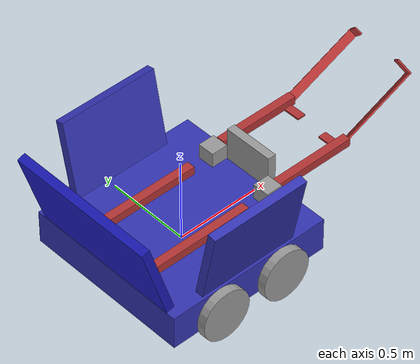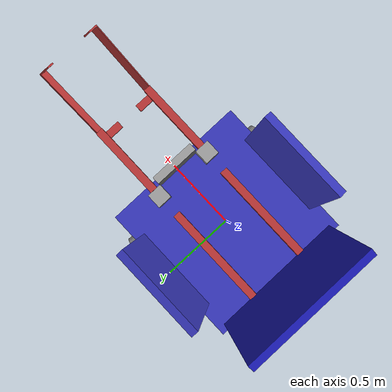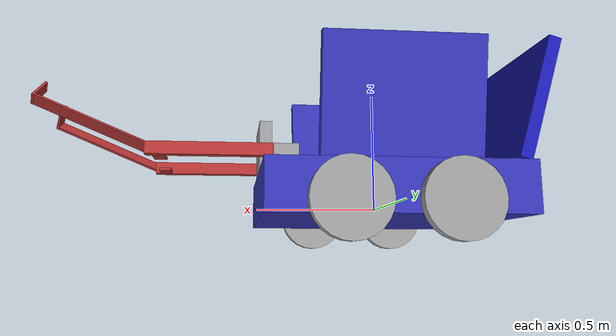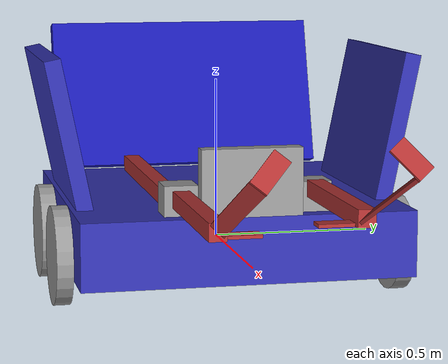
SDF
<?xml version='1.0'?>
<sdf version='1.5'>
  <model name='EKIPS'>
    <link name='base'>
      <pose frame=''>0 -0 0.05 0 -0 0</pose>
      <inertial>
        <mass>40</mass>
        <pose frame=''>0 0 0 0 -0 0</pose>
        <inertia>
          <ixx>1</ixx>
          <ixy>0</ixy>
          <ixz>0</ixz>
          <iyy>1</iyy>
          <iyz>0</iyz>
          <izz>1</izz>
        </inertia>
      </inertial>
      <self_collide>0</self_collide>
      <kinematic>0</kinematic>
      <sensor name='baseUltrasonic' type='sonar'>
        <visualize>1</visualize>
        <always_on>1</always_on>
        <pose frame=''>0.5 0 0.15 0 -1.5707 0</pose>
        <sonar>
          <min>1.5</min>
          <max>8</max>
          <radius>0.2</radius>
        </sonar>
      </sensor>
      <visual name='visual'>
        <pose frame=''>0 0 0 0 -0 0</pose>
        <geometry>
          <box>
            <size>1 1 0.2</size>
          </box>
        </geometry>
        <material>
          <lighting>1</lighting>
          <script>
            <uri>file://media/materials/scripts/gazebo.material</uri>
            <name>Gazebo/Grey</name>
          </script>
          <shader type='pixel'>
            <normal_map>__default__</normal_map>
          </shader>
          <ambient>0 0 0.3 1</ambient>
          <diffuse>0.2 0.2 0.7 1</diffuse>
          <specular>0.01 0.01 0.01 1</specular>
          <emissive>0 0 0 1</emissive>
        </material>
        <transparency>0</transparency>
        <cast_shadows>1</cast_shadows>
      </visual>
      <collision name='collision'>
        <laser_retro>0</laser_retro>
        <max_contacts>10</max_contacts>
        <pose frame=''>0 0 0 0 -0 0</pose>
        <geometry>
          <box>
            <size>1 1 0.2</size>
          </box>
        </geometry>
        <surface>
          <friction>
            <ode>
              <mu>1</mu>
              <mu2>1</mu2>
              <fdir1>0 0 0</fdir1>
              <slip1>0</slip1>
              <slip2>0</slip2>
            </ode>
          </friction>
          <bounce>
            <restitution_coefficient>0</restitution_coefficient>
            <threshold>1e+06</threshold>
          </bounce>
          <contact>
            <collide_without_contact>0</collide_without_contact>
            <collide_without_contact_bitmask>1</collide_without_contact_bitmask>
            <collide_bitmask>1</collide_bitmask>
            <ode>
              <soft_cfm>0</soft_cfm>
              <soft_erp>0.2</soft_erp>
              <kp>1e+13</kp>
              <kd>1</kd>
              <max_vel>0.01</max_vel>
              <min_depth>0</min_depth>
            </ode>
            <bullet>
              <split_impulse>1</split_impulse>
              <split_impulse_penetration_threshold>-0.01</split_impulse_penetration_threshold>
              <soft_cfm>0</soft_cfm>
              <soft_erp>0.2</soft_erp>
              <kp>1e+13</kp>
              <kd>1</kd>
            </bullet>
          </contact>
        </surface>
      </collision>
    </link>
    <link name='back_left_wheel'>
      <pose frame=''>-0.2 0.525 0 1.5707 -0 0</pose>
      <inertial>
        <mass>0.5</mass>
        <pose frame=''>0 0 0 0 -0 0</pose>
        <inertia>
          <ixx>0.00294332</ixx>
          <ixy>0</ixy>
          <ixz>0</ixz>
          <iyy>0.00152724</iyy>
          <iyz>0</iyz>
          <izz>0.00152724</izz>
        </inertia>
      </inertial>
      <self_collide>0</self_collide>
      <kinematic>0</kinematic>
      <visual name='visual'>
        <pose frame=''>0 0 0 0 -0 0</pose>
        <geometry>
          <cylinder>
            <radius>0.15</radius>
            <length>0.05</length>
          </cylinder>
        </geometry>
        <material>
          <lighting>1</lighting>
          <script>
            <uri>file://media/materials/scripts/gazebo.material</uri>
            <name>Gazebo/Grey</name>
          </script>
          <shader type='pixel'>
            <normal_map>__default__</normal_map>
          </shader>
          <ambient>0 0 0 1</ambient>
          <diffuse>0.9 0.9 0.9 1</diffuse>
          <specular>0.01 0.01 0.01 1</specular>
          <emissive>0 0 0 1</emissive>
        </material>
        <transparency>0</transparency>
        <cast_shadows>1</cast_shadows>
      </visual>
      <collision name='collision'>
        <laser_retro>0</laser_retro>
        <max_contacts>10</max_contacts>
        <pose frame=''>0 0 0 0 -0 0</pose>
        <geometry>
          <cylinder>
            <radius>0.15</radius>
            <length>0.05</length>
          </cylinder>
        </geometry>
        <surface>
          <friction>
            <ode>
              <mu>1</mu>
              <mu2>1</mu2>
              <fdir1>0 0 0</fdir1>
              <slip1>0</slip1>
              <slip2>0</slip2>
            </ode>
          </friction>
          <bounce>
            <restitution_coefficient>0</restitution_coefficient>
            <threshold>1e+06</threshold>
          </bounce>
          <contact>
            <collide_without_contact>0</collide_without_contact>
            <collide_without_contact_bitmask>1</collide_without_contact_bitmask>
            <collide_bitmask>1</collide_bitmask>
            <ode>
              <soft_cfm>0</soft_cfm>
              <soft_erp>0.2</soft_erp>
              <kp>1e+13</kp>
              <kd>1</kd>
              <max_vel>0.01</max_vel>
              <min_depth>0</min_depth>
            </ode>
            <bullet>
              <split_impulse>1</split_impulse>
              <split_impulse_penetration_threshold>-0.01</split_impulse_penetration_threshold>
              <soft_cfm>0</soft_cfm>
              <soft_erp>0.2</soft_erp>
              <kp>1e+13</kp>
              <kd>1</kd>
            </bullet>
          </contact>
        </surface>
      </collision>
    </link>
    <link name='back_right_wheel'>
      <pose frame=''>-0.2 -0.525 0 1.5707 -0 0</pose>
      <inertial>
        <mass>0.5</mass>
        <pose frame=''>0 0 0 0 -0 0</pose>
        <inertia>
          <ixx>0.00294332</ixx>
          <ixy>0</ixy>
          <ixz>0</ixz>
          <iyy>0.00152724</iyy>
          <iyz>0</iyz>
          <izz>0.00152724</izz>
        </inertia>
      </inertial>
      <self_collide>0</self_collide>
      <kinematic>0</kinematic>
      <visual name='visual'>
        <pose frame=''>0 0 0 0 -0 0</pose>
        <geometry>
          <cylinder>
            <radius>0.15</radius>
            <length>0.05</length>
          </cylinder>
        </geometry>
        <material>
          <lighting>1</lighting>
          <script>
            <uri>file://media/materials/scripts/gazebo.material</uri>
            <name>Gazebo/Grey</name>
          </script>
          <shader type='pixel'>
            <normal_map>__default__</normal_map>
          </shader>
          <ambient>0 0 0 1</ambient>
          <diffuse>0.9 0.9 0.9 1</diffuse>
          <specular>0.01 0.01 0.01 1</specular>
          <emissive>0 0 0 1</emissive>
        </material>
        <transparency>0</transparency>
        <cast_shadows>1</cast_shadows>
      </visual>
      <collision name='collision'>
        <laser_retro>0</laser_retro>
        <max_contacts>10</max_contacts>
        <pose frame=''>0 0 0 0 -0 0</pose>
        <geometry>
          <cylinder>
            <radius>0.15</radius>
            <length>0.05</length>
          </cylinder>
        </geometry>
        <surface>
          <friction>
            <ode>
              <mu>1</mu>
              <mu2>1</mu2>
              <fdir1>0 0 0</fdir1>
              <slip1>0</slip1>
              <slip2>0</slip2>
            </ode>
          </friction>
          <bounce>
            <restitution_coefficient>0</restitution_coefficient>
            <threshold>1e+06</threshold>
          </bounce>
          <contact>
            <collide_without_contact>0</collide_without_contact>
            <collide_without_contact_bitmask>1</collide_without_contact_bitmask>
            <collide_bitmask>1</collide_bitmask>
            <ode>
              <soft_cfm>0</soft_cfm>
              <soft_erp>0.2</soft_erp>
              <kp>1e+13</kp>
              <kd>1</kd>
              <max_vel>0.01</max_vel>
              <min_depth>0</min_depth>
            </ode>
            <bullet>
              <split_impulse>1</split_impulse>
              <split_impulse_penetration_threshold>-0.01</split_impulse_penetration_threshold>
              <soft_cfm>0</soft_cfm>
              <soft_erp>0.2</soft_erp>
              <kp>1e+13</kp>
              <kd>1</kd>
            </bullet>
          </contact>
        </surface>
      </collision>
    </link>
    <link name='back_wall'>
      <pose frame=''>-0.55 0 0.4 0 -0.3 0</pose>
      <inertial>
        <mass>1</mass>
        <pose frame=''>0 0 0 0 -0 0</pose>
        <inertia>
          <ixx>1</ixx>
          <ixy>0</ixy>
          <ixz>0</ixz>
          <iyy>1</iyy>
          <iyz>0</iyz>
          <izz>1</izz>
        </inertia>
      </inertial>
      <self_collide>0</self_collide>
      <kinematic>0</kinematic>
      <visual name='visual'>
        <pose frame=''>0 0 0 0 -0 0</pose>
        <geometry>
          <box>
            <size>0.05 0.9 0.5</size>
          </box>
        </geometry>
        <material>
          <lighting>1</lighting>
          <script>
            <uri>file://media/materials/scripts/gazebo.material</uri>
            <name>Gazebo/Grey</name>
          </script>
          <shader type='pixel'>
            <normal_map>__default__</normal_map>
          </shader>
          <ambient>0 0 0.3 1</ambient>
          <diffuse>0.1 0.1 0.7 1</diffuse>
          <specular>0.01 0.01 0.01 1</specular>
          <emissive>0 0 0 1</emissive>
        </material>
        <transparency>0</transparency>
        <cast_shadows>1</cast_shadows>
      </visual>
      <collision name='collision'>
        <laser_retro>0</laser_retro>
        <max_contacts>10</max_contacts>
        <pose frame=''>0 0 0 0 -0 0</pose>
        <geometry>
          <box>
            <size>0.05 0.9 0.5</size>
          </box>
        </geometry>
        <surface>
          <friction>
            <ode>
              <mu>1</mu>
              <mu2>1</mu2>
              <fdir1>0 0 0</fdir1>
              <slip1>0</slip1>
              <slip2>0</slip2>
            </ode>
          </friction>
          <bounce>
            <restitution_coefficient>0</restitution_coefficient>
            <threshold>1e+06</threshold>
          </bounce>
          <contact>
            <collide_without_contact>0</collide_without_contact>
            <collide_without_contact_bitmask>1</collide_without_contact_bitmask>
            <collide_bitmask>1</collide_bitmask>
            <ode>
              <soft_cfm>0</soft_cfm>
              <soft_erp>0.2</soft_erp>
              <kp>1e+13</kp>
              <kd>1</kd>
              <max_vel>0.01</max_vel>
              <min_depth>0</min_depth>
            </ode>
            <bullet>
              <split_impulse>1</split_impulse>
              <split_impulse_penetration_threshold>-0.01</split_impulse_penetration_threshold>
              <soft_cfm>0</soft_cfm>
              <soft_erp>0.2</soft_erp>
              <kp>1e+13</kp>
              <kd>1</kd>
            </bullet>
          </contact>
        </surface>
      </collision>
    </link>
    <link name='flipper'>
      <pose frame=''>-0.1 0 0.175 0 -0 0</pose>
      <inertial>
        <mass>1</mass>
        <pose frame=''>0 0 0 0 -0 0</pose>
        <inertia>
          <ixx>1</ixx>
          <ixy>0</ixy>
          <ixz>0</ixz>
          <iyy>1</iyy>
          <iyz>0</iyz>
          <izz>1</izz>
        </inertia>
      </inertial>
      <self_collide>0</self_collide>
      <kinematic>0</kinematic>
      <visual name='ModelPreview_1::flipper::visual_1'>
        <pose frame=''>0 -0.2 0 0 -0 0</pose>
        <geometry>
          <box>
            <size>0.7 0.05 0.05</size>
          </box>
        </geometry>
        <material>
          <lighting>1</lighting>
          <script>
            <uri>file://media/materials/scripts/gazebo.material</uri>
            <name>Gazebo/Grey</name>
          </script>
          <shader type='pixel'>
            <normal_map>__default__</normal_map>
          </shader>
          <ambient>0.7 0 0 1</ambient>
          <diffuse>0.7 0.2 0.2 1</diffuse>
          <specular>0.01 0.01 0.01 1</specular>
          <emissive>0 0 0 1</emissive>
        </material>
        <transparency>0</transparency>
        <cast_shadows>1</cast_shadows>
      </visual>
      <visual name='visual'>
        <pose frame=''>0 0.2 0 0 -0 0</pose>
        <geometry>
          <box>
            <size>0.7 0.05 0.05</size>
          </box>
        </geometry>
        <material>
          <lighting>1</lighting>
          <script>
            <uri>file://media/materials/scripts/gazebo.material</uri>
            <name>Gazebo/Grey</name>
          </script>
          <shader type='pixel'>
            <normal_map>__default__</normal_map>
          </shader>
          <ambient>0.7 0 0 1</ambient>
          <diffuse>0.7 0.2 0.2 1</diffuse>
          <specular>0.01 0.01 0.01 1</specular>
          <emissive>0 0 0 1</emissive>
        </material>
        <transparency>0</transparency>
        <cast_shadows>1</cast_shadows>
      </visual>
      <collision name='collision'>
        <laser_retro>0</laser_retro>
        <max_contacts>10</max_contacts>
        <pose frame=''>0 0.2 0 0 -0 0</pose>
        <geometry>
          <box>
            <size>0.7 0.05 0.05</size>
          </box>
        </geometry>
        <surface>
          <friction>
            <ode>
              <mu>1</mu>
              <mu2>1</mu2>
              <fdir1>0 0 0</fdir1>
              <slip1>0</slip1>
              <slip2>0</slip2>
            </ode>
          </friction>
          <bounce>
            <restitution_coefficient>0</restitution_coefficient>
            <threshold>1e+06</threshold>
          </bounce>
          <contact>
            <collide_without_contact>0</collide_without_contact>
            <collide_without_contact_bitmask>1</collide_without_contact_bitmask>
            <collide_bitmask>1</collide_bitmask>
            <ode>
              <soft_cfm>0</soft_cfm>
              <soft_erp>0.2</soft_erp>
              <kp>1e+13</kp>
              <kd>1</kd>
              <max_vel>0.01</max_vel>
              <min_depth>0</min_depth>
            </ode>
            <bullet>
              <split_impulse>1</split_impulse>
              <split_impulse_penetration_threshold>-0.01</split_impulse_penetration_threshold>
              <soft_cfm>0</soft_cfm>
              <soft_erp>0.2</soft_erp>
              <kp>1e+13</kp>
              <kd>1</kd>
            </bullet>
          </contact>
        </surface>
      </collision>
      <collision name='collision_1'>
        <laser_retro>0</laser_retro>
        <max_contacts>10</max_contacts>
        <pose frame=''>0 -0.2 0 0 -0 0</pose>
        <geometry>
          <box>
            <size>0.7 0.05 0.05</size>
          </box>
        </geometry>
        <surface>
          <friction>
            <ode>
              <mu>1</mu>
              <mu2>1</mu2>
              <fdir1>0 0 0</fdir1>
              <slip1>0</slip1>
              <slip2>0</slip2>
            </ode>
          </friction>
          <bounce>
            <restitution_coefficient>0</restitution_coefficient>
            <threshold>1e+06</threshold>
          </bounce>
          <contact>
            <collide_without_contact>0</collide_without_contact>
            <collide_without_contact_bitmask>1</collide_without_contact_bitmask>
            <collide_bitmask>1</collide_bitmask>
            <ode>
              <soft_cfm>0</soft_cfm>
              <soft_erp>0.2</soft_erp>
              <kp>1e+13</kp>
              <kd>1</kd>
              <max_vel>0.01</max_vel>
              <min_depth>0</min_depth>
            </ode>
            <bullet>
              <split_impulse>1</split_impulse>
              <split_impulse_penetration_threshold>-0.01</split_impulse_penetration_threshold>
              <soft_cfm>0</soft_cfm>
              <soft_erp>0.2</soft_erp>
              <kp>1e+13</kp>
              <kd>1</kd>
            </bullet>
          </contact>
        </surface>
      </collision>
    </link>
    <link name='front_left_wheel'>
      <pose frame=''>0.2 0.525 -0 1.5707 -0 0</pose>
      <inertial>
        <mass>0.5</mass>
        <pose frame=''>0 0 0 0 -0 0</pose>
        <inertia>
          <ixx>0.00294332</ixx>
          <ixy>0</ixy>
          <ixz>0</ixz>
          <iyy>0.00152724</iyy>
          <iyz>0</iyz>
          <izz>0.00152724</izz>
        </inertia>
      </inertial>
      <self_collide>1</self_collide>
      <kinematic>0</kinematic>
      <visual name='visual'>
        <pose frame=''>0 0 0 0 -0 0</pose>
        <geometry>
          <cylinder>
            <radius>0.15</radius>
            <length>0.05</length>
          </cylinder>
        </geometry>
        <material>
          <lighting>1</lighting>
          <script>
            <uri>file://media/materials/scripts/gazebo.material</uri>
            <name>Gazebo/Grey</name>
          </script>
          <shader type='pixel'>
            <normal_map>__default__</normal_map>
          </shader>
          <ambient>0 0 0 1</ambient>
          <diffuse>0.9 0.9 0.9 1</diffuse>
          <specular>0.01 0.01 0.01 1</specular>
          <emissive>0 0 0 1</emissive>
        </material>
        <transparency>0</transparency>
        <cast_shadows>1</cast_shadows>
      </visual>
      <collision name='collision'>
        <laser_retro>0</laser_retro>
        <max_contacts>10</max_contacts>
        <pose frame=''>0 0 0 0 -0 0</pose>
        <geometry>
          <cylinder>
            <radius>0.15</radius>
            <length>0.05</length>
          </cylinder>
        </geometry>
        <surface>
          <friction>
            <ode>
              <mu>1</mu>
              <mu2>1</mu2>
              <fdir1>0 0 0</fdir1>
              <slip1>0</slip1>
              <slip2>0</slip2>
            </ode>
          </friction>
          <bounce>
            <restitution_coefficient>0</restitution_coefficient>
            <threshold>1e+06</threshold>
          </bounce>
          <contact>
            <collide_without_contact>0</collide_without_contact>
            <collide_without_contact_bitmask>1</collide_without_contact_bitmask>
            <collide_bitmask>1</collide_bitmask>
            <ode>
              <soft_cfm>0</soft_cfm>
              <soft_erp>0.2</soft_erp>
              <kp>1e+13</kp>
              <kd>1</kd>
              <max_vel>0.01</max_vel>
              <min_depth>0</min_depth>
            </ode>
            <bullet>
              <split_impulse>1</split_impulse>
              <split_impulse_penetration_threshold>-0.01</split_impulse_penetration_threshold>
              <soft_cfm>0</soft_cfm>
              <soft_erp>0.2</soft_erp>
              <kp>1e+13</kp>
              <kd>1</kd>
            </bullet>
          </contact>
        </surface>
      </collision>
    </link>
    <link name='front_right_wheel'>
      <pose frame=''>0.2 -0.525 -0 1.5707 -0 0</pose>
      <inertial>
        <mass>0.5</mass>
        <pose frame=''>0 0 0 0 -0 0</pose>
        <inertia>
          <ixx>0.00294332</ixx>
          <ixy>0</ixy>
          <ixz>0</ixz>
          <iyy>0.00152724</iyy>
          <iyz>0</iyz>
          <izz>0.00152724</izz>
        </inertia>
      </inertial>
      <self_collide>0</self_collide>
      <kinematic>0</kinematic>
      <visual name='visual'>
        <pose frame=''>0 0 0 0 -0 0</pose>
        <geometry>
          <cylinder>
            <radius>0.15</radius>
            <length>0.05</length>
          </cylinder>
        </geometry>
        <material>
          <lighting>1</lighting>
          <script>
            <uri>file://media/materials/scripts/gazebo.material</uri>
            <name>Gazebo/Grey</name>
          </script>
          <shader type='pixel'>
            <normal_map>__default__</normal_map>
          </shader>
          <ambient>0 0 0 1</ambient>
          <diffuse>0.9 0.9 0.9 1</diffuse>
          <specular>0.01 0.01 0.01 1</specular>
          <emissive>0 0 0 1</emissive>
        </material>
        <transparency>0</transparency>
        <cast_shadows>1</cast_shadows>
      </visual>
      <collision name='collision'>
        <laser_retro>0</laser_retro>
        <max_contacts>10</max_contacts>
        <pose frame=''>0 0 0 0 -0 0</pose>
        <geometry>
          <cylinder>
            <radius>0.15</radius>
            <length>0.05</length>
          </cylinder>
        </geometry>
        <surface>
          <friction>
            <ode>
              <mu>1</mu>
              <mu2>1</mu2>
              <fdir1>0 0 0</fdir1>
              <slip1>0</slip1>
              <slip2>0</slip2>
            </ode>
          </friction>
          <bounce>
            <restitution_coefficient>0</restitution_coefficient>
            <threshold>1e+06</threshold>
          </bounce>
          <contact>
            <collide_without_contact>0</collide_without_contact>
            <collide_without_contact_bitmask>1</collide_without_contact_bitmask>
            <collide_bitmask>1</collide_bitmask>
            <ode>
              <soft_cfm>0</soft_cfm>
              <soft_erp>0.2</soft_erp>
              <kp>1e+13</kp>
              <kd>1</kd>
              <max_vel>0.01</max_vel>
              <min_depth>0</min_depth>
            </ode>
            <bullet>
              <split_impulse>1</split_impulse>
              <split_impulse_penetration_threshold>-0.01</split_impulse_penetration_threshold>
              <soft_cfm>0</soft_cfm>
              <soft_erp>0.2</soft_erp>
              <kp>1e+13</kp>
              <kd>1</kd>
            </bullet>
          </contact>
        </surface>
      </collision>
    </link>
    <link name='front_wall'>
      <pose frame=''>0.475 -0 0.25 0 -0 0</pose>
      <inertial>
        <mass>1</mass>
        <pose frame=''>0 0 0 0 -0 0</pose>
        <inertia>
          <ixx>1</ixx>
          <ixy>0</ixy>
          <ixz>0</ixz>
          <iyy>1</iyy>
          <iyz>0</iyz>
          <izz>1</izz>
        </inertia>
      </inertial>
      <self_collide>0</self_collide>
      <kinematic>0</kinematic>
      <visual name='visual'>
        <pose frame=''>0 0 0 0 -0 0</pose>
        <geometry>
          <box>
            <size>0.05 0.3 0.2</size>
          </box>
        </geometry>
        <material>
          <lighting>1</lighting>
          <script>
            <uri>file://media/materials/scripts/gazebo.material</uri>
            <name>Gazebo/Grey</name>
          </script>
          <shader type='pixel'>
            <normal_map>__default__</normal_map>
          </shader>
          <ambient>0 0 0 1</ambient>
          <diffuse>0 0 0 1</diffuse>
          <specular>0.01 0.01 0.01 1</specular>
          <emissive>0 0 0 1</emissive>
        </material>
        <transparency>0</transparency>
        <cast_shadows>1</cast_shadows>
      </visual>
      <collision name='collision'>
        <laser_retro>0</laser_retro>
        <max_contacts>10</max_contacts>
        <pose frame=''>0 0 0 0 -0 0</pose>
        <geometry>
          <box>
            <size>0.05 0.3 0.2</size>
          </box>
        </geometry>
        <surface>
          <friction>
            <ode>
              <mu>1</mu>
              <mu2>1</mu2>
              <fdir1>0 0 0</fdir1>
              <slip1>0</slip1>
              <slip2>0</slip2>
            </ode>
          </friction>
          <bounce>
            <restitution_coefficient>0</restitution_coefficient>
            <threshold>1e+06</threshold>
          </bounce>
          <contact>
            <collide_without_contact>0</collide_without_contact>
            <collide_without_contact_bitmask>1</collide_without_contact_bitmask>
            <collide_bitmask>1</collide_bitmask>
            <ode>
              <soft_cfm>0</soft_cfm>
              <soft_erp>0.2</soft_erp>
              <kp>1e+13</kp>
              <kd>1</kd>
              <max_vel>0.01</max_vel>
              <min_depth>0</min_depth>
            </ode>
            <bullet>
              <split_impulse>1</split_impulse>
              <split_impulse_penetration_threshold>-0.01</split_impulse_penetration_threshold>
              <soft_cfm>0</soft_cfm>
              <soft_erp>0.2</soft_erp>
              <kp>1e+13</kp>
              <kd>1</kd>
            </bullet>
          </contact>
        </surface>
      </collision>
    </link>
    <link name='left_claw'>
      <pose frame=''>0.7 0.2 0.22 0 -0 0</pose>
      <inertial>
        <mass>3</mass>
        <pose frame=''>0 0 0 0 -0 0</pose>
        <inertia>
          <ixx>1</ixx>
          <ixy>0</ixy>
          <ixz>0</ixz>
          <iyy>1</iyy>
          <iyz>0</iyz>
          <izz>1</izz>
        </inertia>
      </inertial>
      <self_collide>1</self_collide>
      <kinematic>0</kinematic>
      <gravity>1</gravity>
      <visual name='left_claw::visual_3'>
        <pose frame=''>0.672 -0.03 0.22 -0.857 -0.4 0</pose>
        <geometry>
          <box>
            <size>0.01 0.1 0.05</size>
          </box>
        </geometry>
        <material>
          <lighting>1</lighting>
          <script>
            <uri>file://media/materials/scripts/gazebo.material</uri>
            <name>Gazebo/Grey</name>
          </script>
          <shader type='pixel'>
            <normal_map>__default__</normal_map>
          </shader>
          <ambient>0.7 0 0 1</ambient>
          <diffuse>0.7 0.2 0.2 1</diffuse>
          <specular>0.01 0.01 0.01 1</specular>
          <emissive>0 0 0 1</emissive>
        </material>
        <transparency>0</transparency>
        <cast_shadows>1</cast_shadows>
      </visual>
      <visual name='left_claw::visual_0'>
        <pose frame=''>0 0 0 0 -0 0</pose>
        <geometry>
          <box>
            <size>0.5 0.05 0.05</size>
          </box>
        </geometry>
        <material>
          <lighting>1</lighting>
          <script>
            <uri>file://media/materials/scripts/gazebo.material</uri>
            <name>Gazebo/Grey</name>
          </script>
          <shader type='pixel'>
            <normal_map>__default__</normal_map>
          </shader>
          <ambient>0.7 0 0 1</ambient>
          <diffuse>0.7 0.2 0.2 1</diffuse>
          <specular>0.01 0.01 0.01 1</specular>
          <emissive>0 0 0 1</emissive>
        </material>
        <transparency>0</transparency>
        <cast_shadows>1</cast_shadows>
      </visual>
      <visual name='left_claw::visual_2'>
        <pose frame=''>0.45 0 0.09 0.707 -0.4 0</pose>
        <geometry>
          <box>
            <size>0.5 0.05 0.01</size>
          </box>
        </geometry>
        <material>
          <ambient>0.7 0 0 1</ambient>
          <diffuse>0.7 0.2 0.2 1</diffuse>
          <specular>0.01 0.01 0.01 1</specular>
          <emissive>0 0 0 1</emissive>
          <shader type='pixel'>
            <normal_map>__default__</normal_map>
          </shader>
          <script>
            <name>Gazebo/Grey</name>
            <uri>__default__</uri>
          </script>
        </material>
        <transparency>0</transparency>
        <cast_shadows>1</cast_shadows>
      </visual>
      <visual name='left_claw::visual_1'>
        <pose frame=''>0.2 -0.075 -0.02 0 -0 0</pose>
        <geometry>
          <box>
            <size>0.05 0.1 0.01</size>
          </box>
        </geometry>
        <material>
          <lighting>1</lighting>
          <script>
            <uri>file://media/materials/scripts/gazebo.material</uri>
            <name>Gazebo/Grey</name>
          </script>
          <shader type='pixel'>
            <normal_map>__default__</normal_map>
          </shader>
          <ambient>0.7 0 0 1</ambient>
          <diffuse>0.7 0.2 0.2 1</diffuse>
          <specular>0.01 0.01 0.01 1</specular>
          <emissive>0 0 0 1</emissive>
        </material>
        <transparency>0</transparency>
        <cast_shadows>1</cast_shadows>
      </visual>
      <collision name='collision_3'>
        <laser_retro>0</laser_retro>
        <max_contacts>10</max_contacts>
        <pose frame=''>0.672 -0.03 0.22 -0.857 -0.4 0</pose>
        <geometry>
          <box>
            <size>0.01 0.1 0.05</size>
          </box>
        </geometry>
        <surface>
          <friction>
            <ode>
              <mu>1</mu>
              <mu2>1</mu2>
              <fdir1>0 0 0</fdir1>
              <slip1>0</slip1>
              <slip2>0</slip2>
            </ode>
          </friction>
          <bounce>
            <restitution_coefficient>0</restitution_coefficient>
            <threshold>1e+06</threshold>
          </bounce>
          <contact>
            <collide_without_contact>0</collide_without_contact>
            <collide_without_contact_bitmask>1</collide_without_contact_bitmask>
            <collide_bitmask>1</collide_bitmask>
            <ode>
              <soft_cfm>0</soft_cfm>
              <soft_erp>0.2</soft_erp>
              <kp>1e+13</kp>
              <kd>1</kd>
              <max_vel>0.01</max_vel>
              <min_depth>0</min_depth>
            </ode>
            <bullet>
              <split_impulse>1</split_impulse>
              <split_impulse_penetration_threshold>-0.01</split_impulse_penetration_threshold>
              <soft_cfm>0</soft_cfm>
              <soft_erp>0.2</soft_erp>
              <kp>1e+13</kp>
              <kd>1</kd>
            </bullet>
          </contact>
        </surface>
      </collision>
      <collision name='collision_2'>
        <laser_retro>0</laser_retro>
        <max_contacts>10</max_contacts>
        <pose frame=''>0.45 0 0.09 0.707 -0.4 0</pose>
        <geometry>
          <box>
            <size>0.5 0.05 0.01</size>
          </box>
        </geometry>
        <surface>
          <friction>
            <ode>
              <mu>1</mu>
              <mu2>1</mu2>
              <fdir1>0 0 0</fdir1>
              <slip1>0</slip1>
              <slip2>0</slip2>
            </ode>
          </friction>
          <bounce>
            <restitution_coefficient>0</restitution_coefficient>
            <threshold>1e+06</threshold>
          </bounce>
          <contact>
            <collide_without_contact>0</collide_without_contact>
            <collide_without_contact_bitmask>1</collide_without_contact_bitmask>
            <collide_bitmask>1</collide_bitmask>
            <ode>
              <soft_cfm>0</soft_cfm>
              <soft_erp>0.2</soft_erp>
              <kp>1e+13</kp>
              <kd>1</kd>
              <max_vel>0.01</max_vel>
              <min_depth>0</min_depth>
            </ode>
            <bullet>
              <split_impulse>1</split_impulse>
              <split_impulse_penetration_threshold>-0.01</split_impulse_penetration_threshold>
              <soft_cfm>0</soft_cfm>
              <soft_erp>0.2</soft_erp>
              <kp>1e+13</kp>
              <kd>1</kd>
            </bullet>
          </contact>
        </surface>
      </collision>
      <collision name='collision_0'>
        <laser_retro>0</laser_retro>
        <max_contacts>10</max_contacts>
        <pose frame=''>0 0 0 0 -0 0</pose>
        <geometry>
          <box>
            <size>0.5 0.05 0.05</size>
          </box>
        </geometry>
        <surface>
          <friction>
            <ode>
              <mu>1</mu>
              <mu2>1</mu2>
              <fdir1>0 0 0</fdir1>
              <slip1>0</slip1>
              <slip2>0</slip2>
            </ode>
          </friction>
          <bounce>
            <restitution_coefficient>0</restitution_coefficient>
            <threshold>1e+06</threshold>
          </bounce>
          <contact>
            <collide_without_contact>0</collide_without_contact>
            <collide_without_contact_bitmask>1</collide_without_contact_bitmask>
            <collide_bitmask>1</collide_bitmask>
            <ode>
              <soft_cfm>0</soft_cfm>
              <soft_erp>0.2</soft_erp>
              <kp>1e+13</kp>
              <kd>1</kd>
              <max_vel>0.01</max_vel>
              <min_depth>0</min_depth>
            </ode>
            <bullet>
              <split_impulse>1</split_impulse>
              <split_impulse_penetration_threshold>-0.01</split_impulse_penetration_threshold>
              <soft_cfm>0</soft_cfm>
              <soft_erp>0.2</soft_erp>
              <kp>1e+13</kp>
              <kd>1</kd>
            </bullet>
          </contact>
        </surface>
      </collision>
      <collision name='collision_1'>
        <laser_retro>0</laser_retro>
        <max_contacts>10</max_contacts>
        <pose frame=''>0.2 -0.075 -0.02 0 -0 0</pose>
        <geometry>
          <box>
            <size>0.05 0.1 0.01</size>
          </box>
        </geometry>
        <surface>
          <friction>
            <ode>
              <mu>1</mu>
              <mu2>1</mu2>
              <fdir1>0 0 0</fdir1>
              <slip1>0</slip1>
              <slip2>0</slip2>
            </ode>
          </friction>
          <bounce>
            <restitution_coefficient>0</restitution_coefficient>
            <threshold>1e+06</threshold>
          </bounce>
          <contact>
            <collide_without_contact>0</collide_without_contact>
            <collide_without_contact_bitmask>1</collide_without_contact_bitmask>
            <collide_bitmask>1</collide_bitmask>
            <ode>
              <soft_cfm>0</soft_cfm>
              <soft_erp>0.2</soft_erp>
              <kp>1e+13</kp>
              <kd>1</kd>
              <max_vel>0.01</max_vel>
              <min_depth>0</min_depth>
            </ode>
            <bullet>
              <split_impulse>1</split_impulse>
              <split_impulse_penetration_threshold>-0.01</split_impulse_penetration_threshold>
              <soft_cfm>0</soft_cfm>
              <soft_erp>0.2</soft_erp>
              <kp>1e+13</kp>
              <kd>1</kd>
            </bullet>
          </contact>
        </surface>
      </collision>
    </link>
    <link name='left_wall'>
      <pose frame=''>0 0.5 0.35 -0.2 -0 -0</pose>
      <inertial>
        <mass>1</mass>
        <pose frame=''>0 0 0 0 -0 0</pose>
        <inertia>
          <ixx>1</ixx>
          <ixy>0</ixy>
          <ixz>0</ixz>
          <iyy>1</iyy>
          <iyz>0</iyz>
          <izz>1</izz>
        </inertia>
      </inertial>
      <self_collide>0</self_collide>
      <kinematic>0</kinematic>
      <visual name='visual'>
        <pose frame=''>0 0 0 0 -0 0</pose>
        <geometry>
          <box>
            <size>0.6 0.05 0.5</size>
          </box>
        </geometry>
        <material>
          <lighting>1</lighting>
          <script>
            <uri>file://media/materials/scripts/gazebo.material</uri>
            <name>Gazebo/Grey</name>
          </script>
          <shader type='pixel'>
            <normal_map>__default__</normal_map>
          </shader>
          <ambient>0 0 0.3 1</ambient>
          <diffuse>0.2 0.2 0.7 1</diffuse>
          <specular>0.01 0.01 0.01 1</specular>
          <emissive>0 0 0 1</emissive>
        </material>
        <transparency>0</transparency>
        <cast_shadows>1</cast_shadows>
      </visual>
      <collision name='collision'>
        <laser_retro>0</laser_retro>
        <max_contacts>10</max_contacts>
        <pose frame=''>0 0 0 0 -0 0</pose>
        <geometry>
          <box>
            <size>0.6 0.05 0.5</size>
          </box>
        </geometry>
        <surface>
          <friction>
            <ode>
              <mu>1</mu>
              <mu2>1</mu2>
              <fdir1>0 0 0</fdir1>
              <slip1>0</slip1>
              <slip2>0</slip2>
            </ode>
          </friction>
          <bounce>
            <restitution_coefficient>0</restitution_coefficient>
            <threshold>1e+06</threshold>
          </bounce>
          <contact>
            <collide_without_contact>0</collide_without_contact>
            <collide_without_contact_bitmask>1</collide_without_contact_bitmask>
            <collide_bitmask>1</collide_bitmask>
            <ode>
              <soft_cfm>0</soft_cfm>
              <soft_erp>0.2</soft_erp>
              <kp>1e+13</kp>
              <kd>1</kd>
              <max_vel>0.01</max_vel>
              <min_depth>0</min_depth>
            </ode>
            <bullet>
              <split_impulse>1</split_impulse>
              <split_impulse_penetration_threshold>-0.01</split_impulse_penetration_threshold>
              <soft_cfm>0</soft_cfm>
              <soft_erp>0.2</soft_erp>
              <kp>1e+13</kp>
              <kd>1</kd>
            </bullet>
          </contact>
        </surface>
      </collision>
    </link>
    <link name='left_wrist'>
      <pose frame=''>0.4 0.2 0.19 0 -0 0</pose>
      <inertial>
        <mass>1</mass>
        <pose frame=''>0 0 0 0 -0 0</pose>
        <inertia>
          <ixx>1</ixx>
          <ixy>0</ixy>
          <ixz>0</ixz>
          <iyy>1</iyy>
          <iyz>0</iyz>
          <izz>1</izz>
        </inertia>
      </inertial>
      <self_collide>0</self_collide>
      <kinematic>0</kinematic>
      <visual name='visual'>
        <pose frame=''>0 0 0 0 -0 0</pose>
        <geometry>
          <box>
            <size>0.1 0.1 0.1</size>
          </box>
        </geometry>
        <material>
          <lighting>1</lighting>
          <script>
            <uri>file://media/materials/scripts/gazebo.material</uri>
            <name>Gazebo/Grey</name>
          </script>
          <shader type='pixel'>
            <normal_map>__default__</normal_map>
          </shader>
          <ambient>0 0 0 1</ambient>
          <diffuse>0 0 0 1</diffuse>
          <specular>0.01 0.01 0.01 1</specular>
          <emissive>0 0 0 1</emissive>
        </material>
        <transparency>0</transparency>
        <cast_shadows>1</cast_shadows>
      </visual>
      <collision name='collision'>
        <laser_retro>0</laser_retro>
        <max_contacts>10</max_contacts>
        <pose frame=''>0 0 0 0 -0 0</pose>
        <geometry>
          <box>
            <size>0.1 0.1 0.1</size>
          </box>
        </geometry>
        <surface>
          <friction>
            <ode>
              <mu>1</mu>
              <mu2>1</mu2>
              <fdir1>0 0 0</fdir1>
              <slip1>0</slip1>
              <slip2>0</slip2>
            </ode>
          </friction>
          <bounce>
            <restitution_coefficient>0</restitution_coefficient>
            <threshold>1e+06</threshold>
          </bounce>
          <contact>
            <collide_without_contact>0</collide_without_contact>
            <collide_without_contact_bitmask>1</collide_without_contact_bitmask>
            <collide_bitmask>1</collide_bitmask>
            <ode>
              <soft_cfm>0</soft_cfm>
              <soft_erp>0.2</soft_erp>
              <kp>1e+13</kp>
              <kd>1</kd>
              <max_vel>0.01</max_vel>
              <min_depth>0</min_depth>
            </ode>
            <bullet>
              <split_impulse>1</split_impulse>
              <split_impulse_penetration_threshold>-0.01</split_impulse_penetration_threshold>
              <soft_cfm>0</soft_cfm>
              <soft_erp>0.2</soft_erp>
              <kp>1e+13</kp>
              <kd>1</kd>
            </bullet>
          </contact>
        </surface>
      </collision>
    </link>
    <link name='right_claw'>
      <pose frame=''>0.7 -0.2 0.2 0 -0 0</pose>
      <inertial>
        <mass>3</mass>
        <pose frame=''>0 0 0 0 -0 0</pose>
        <inertia>
          <ixx>1</ixx>
          <ixy>0</ixy>
          <ixz>0</ixz>
          <iyy>1</iyy>
          <iyz>0</iyz>
          <izz>1</izz>
        </inertia>
      </inertial>
      <self_collide>0</self_collide>
      <kinematic>0</kinematic>
      <gravity>1</gravity>
      <visual name='right_claw::visual_3'>
        <pose frame=''>0.672 0.03 0.22 0.857 -0.4 0</pose>
        <geometry>
          <box>
            <size>0.01 0.1 0.05</size>
          </box>
        </geometry>
        <material>
          <lighting>1</lighting>
          <script>
            <uri>file://media/materials/scripts/gazebo.material</uri>
            <name>Gazebo/Grey</name>
          </script>
          <shader type='pixel'>
            <normal_map>__default__</normal_map>
          </shader>
          <ambient>0.7 0 0 1</ambient>
          <diffuse>0.7 0.2 0.2 1</diffuse>
          <specular>0.01 0.01 0.01 1</specular>
          <emissive>0 0 0 1</emissive>
        </material>
        <transparency>0</transparency>
        <cast_shadows>1</cast_shadows>
      </visual>
      <visual name='right_claw::visual_2'>
        <pose frame=''>0.45 0 0.09 -0.707 -0.4 -0</pose>
        <geometry>
          <box>
            <size>0.5 0.05 0.01</size>
          </box>
        </geometry>
        <material>
          <ambient>0.7 0 0 1</ambient>
          <diffuse>0.7 0.2 0.2 1</diffuse>
          <specular>0.01 0.01 0.01 1</specular>
          <emissive>0 0 0 1</emissive>
          <shader type='pixel'>
            <normal_map>__default__</normal_map>
          </shader>
          <script>
            <name>Gazebo/Grey</name>
            <uri>__default__</uri>
          </script>
        </material>
        <transparency>0</transparency>
        <cast_shadows>1</cast_shadows>
      </visual>
      <visual name='right_claw::visual_0'>
        <pose frame=''>0 0 0 0 -0 0</pose>
        <geometry>
          <box>
            <size>0.5 0.05 0.05</size>
          </box>
        </geometry>
        <material>
          <lighting>1</lighting>
          <script>
            <uri>file://media/materials/scripts/gazebo.material</uri>
            <name>Gazebo/Grey</name>
          </script>
          <shader type='pixel'>
            <normal_map>__default__</normal_map>
          </shader>
          <ambient>0.7 0 0 1</ambient>
          <diffuse>0.7 0.2 0.2 1</diffuse>
          <specular>0.01 0.01 0.01 1</specular>
          <emissive>0 0 0 1</emissive>
        </material>
        <transparency>0</transparency>
        <cast_shadows>1</cast_shadows>
      </visual>
      <visual name='right_claw::visual_1'>
        <pose frame=''>0.2 0.075 -0.02 0 -0 0</pose>
        <geometry>
          <box>
            <size>0.05 0.1 0.01</size>
          </box>
        </geometry>
        <material>
          <lighting>1</lighting>
          <script>
            <uri>file://media/materials/scripts/gazebo.material</uri>
            <name>Gazebo/Grey</name>
          </script>
          <shader type='pixel'>
            <normal_map>__default__</normal_map>
          </shader>
          <ambient>0.7 0 0 1</ambient>
          <diffuse>0.7 0.2 0.2 1</diffuse>
          <specular>0.01 0.01 0.01 1</specular>
          <emissive>0 0 0 1</emissive>
        </material>
        <transparency>0</transparency>
        <cast_shadows>1</cast_shadows>
      </visual>
      <collision name='collision_3'>
        <laser_retro>0</laser_retro>
        <max_contacts>10</max_contacts>
        <pose frame=''>0.672 0.03 0.22 0.857 -0.4 0</pose>
        <geometry>
          <box>
            <size>0.01 0.1 0.05</size>
          </box>
        </geometry>
        <surface>
          <friction>
            <ode>
              <mu>1</mu>
              <mu2>1</mu2>
              <fdir1>0 0 0</fdir1>
              <slip1>0</slip1>
              <slip2>0</slip2>
            </ode>
          </friction>
          <bounce>
            <restitution_coefficient>0</restitution_coefficient>
            <threshold>1e+06</threshold>
          </bounce>
          <contact>
            <collide_without_contact>0</collide_without_contact>
            <collide_without_contact_bitmask>1</collide_without_contact_bitmask>
            <collide_bitmask>1</collide_bitmask>
            <ode>
              <soft_cfm>0</soft_cfm>
              <soft_erp>0.2</soft_erp>
              <kp>1e+13</kp>
              <kd>1</kd>
              <max_vel>0.01</max_vel>
              <min_depth>0</min_depth>
            </ode>
            <bullet>
              <split_impulse>1</split_impulse>
              <split_impulse_penetration_threshold>-0.01</split_impulse_penetration_threshold>
              <soft_cfm>0</soft_cfm>
              <soft_erp>0.2</soft_erp>
              <kp>1e+13</kp>
              <kd>1</kd>
            </bullet>
          </contact>
        </surface>
      </collision>
      <collision name='collision_2'>
        <laser_retro>0</laser_retro>
        <max_contacts>10</max_contacts>
        <pose frame=''>0.45 0 0.09 -0.707 -0.4 -0</pose>
        <geometry>
          <box>
            <size>0.5 0.05 0.01</size>
          </box>
        </geometry>
        <surface>
          <friction>
            <ode>
              <mu>1</mu>
              <mu2>1</mu2>
              <fdir1>0 0 0</fdir1>
              <slip1>0</slip1>
              <slip2>0</slip2>
            </ode>
          </friction>
          <bounce>
            <restitution_coefficient>0</restitution_coefficient>
            <threshold>1e+06</threshold>
          </bounce>
          <contact>
            <collide_without_contact>0</collide_without_contact>
            <collide_without_contact_bitmask>1</collide_without_contact_bitmask>
            <collide_bitmask>1</collide_bitmask>
            <ode>
              <soft_cfm>0</soft_cfm>
              <soft_erp>0.2</soft_erp>
              <kp>1e+13</kp>
              <kd>1</kd>
              <max_vel>0.01</max_vel>
              <min_depth>0</min_depth>
            </ode>
            <bullet>
              <split_impulse>1</split_impulse>
              <split_impulse_penetration_threshold>-0.01</split_impulse_penetration_threshold>
              <soft_cfm>0</soft_cfm>
              <soft_erp>0.2</soft_erp>
              <kp>1e+13</kp>
              <kd>1</kd>
            </bullet>
          </contact>
        </surface>
      </collision>
      <collision name='collision_0'>
        <laser_retro>0</laser_retro>
        <max_contacts>10</max_contacts>
        <pose frame=''>0 0 0 0 -0 0</pose>
        <geometry>
          <box>
            <size>0.5 0.05 0.05</size>
          </box>
        </geometry>
        <surface>
          <friction>
            <ode>
              <mu>1</mu>
              <mu2>1</mu2>
              <fdir1>0 0 0</fdir1>
              <slip1>0</slip1>
              <slip2>0</slip2>
            </ode>
          </friction>
          <bounce>
            <restitution_coefficient>0</restitution_coefficient>
            <threshold>1e+06</threshold>
          </bounce>
          <contact>
            <collide_without_contact>0</collide_without_contact>
            <collide_without_contact_bitmask>1</collide_without_contact_bitmask>
            <collide_bitmask>1</collide_bitmask>
            <ode>
              <soft_cfm>0</soft_cfm>
              <soft_erp>0.2</soft_erp>
              <kp>1e+13</kp>
              <kd>1</kd>
              <max_vel>0.01</max_vel>
              <min_depth>0</min_depth>
            </ode>
            <bullet>
              <split_impulse>1</split_impulse>
              <split_impulse_penetration_threshold>-0.01</split_impulse_penetration_threshold>
              <soft_cfm>0</soft_cfm>
              <soft_erp>0.2</soft_erp>
              <kp>1e+13</kp>
              <kd>1</kd>
            </bullet>
          </contact>
        </surface>
      </collision>
      <collision name='collision_1'>
        <laser_retro>0</laser_retro>
        <max_contacts>10</max_contacts>
        <pose frame=''>0.2 0.075 -0.02 0 -0 0</pose>
        <geometry>
          <box>
            <size>0.05 0.1 0.01</size>
          </box>
        </geometry>
        <surface>
          <friction>
            <ode>
              <mu>1</mu>
              <mu2>1</mu2>
              <fdir1>0 0 0</fdir1>
              <slip1>0</slip1>
              <slip2>0</slip2>
            </ode>
          </friction>
          <bounce>
            <restitution_coefficient>0</restitution_coefficient>
            <threshold>1e+06</threshold>
          </bounce>
          <contact>
            <collide_without_contact>0</collide_without_contact>
            <collide_without_contact_bitmask>1</collide_without_contact_bitmask>
            <collide_bitmask>1</collide_bitmask>
            <ode>
              <soft_cfm>0</soft_cfm>
              <soft_erp>0.2</soft_erp>
              <kp>1e+13</kp>
              <kd>1</kd>
              <max_vel>0.01</max_vel>
              <min_depth>0</min_depth>
            </ode>
            <bullet>
              <split_impulse>1</split_impulse>
              <split_impulse_penetration_threshold>-0.01</split_impulse_penetration_threshold>
              <soft_cfm>0</soft_cfm>
              <soft_erp>0.2</soft_erp>
              <kp>1e+13</kp>
              <kd>1</kd>
            </bullet>
          </contact>
        </surface>
      </collision>
    </link>
    <link name='right_wall'>
      <pose frame=''>-0 -0.5 0.35 0.2 0 0</pose>
      <inertial>
        <mass>1</mass>
        <pose frame=''>0 0 0 0 -0 0</pose>
        <inertia>
          <ixx>1</ixx>
          <ixy>0</ixy>
          <ixz>0</ixz>
          <iyy>1</iyy>
          <iyz>0</iyz>
          <izz>1</izz>
        </inertia>
      </inertial>
      <self_collide>1</self_collide>
      <kinematic>0</kinematic>
      <visual name='visual'>
        <pose frame=''>0 0 0 0 -0 0</pose>
        <geometry>
          <box>
            <size>0.6 0.05 0.5</size>
          </box>
        </geometry>
        <material>
          <lighting>1</lighting>
          <script>
            <uri>file://media/materials/scripts/gazebo.material</uri>
            <name>Gazebo/Grey</name>
          </script>
          <shader type='pixel'>
            <normal_map>__default__</normal_map>
          </shader>
          <ambient>0 0 0.3 1</ambient>
          <diffuse>0.2 0.2 0.7 1</diffuse>
          <specular>0.01 0.01 0.01 1</specular>
          <emissive>0 0 0 1</emissive>
        </material>
        <transparency>0</transparency>
        <cast_shadows>1</cast_shadows>
      </visual>
      <collision name='collision'>
        <laser_retro>0</laser_retro>
        <max_contacts>10</max_contacts>
        <pose frame=''>0 0 0 0 -0 0</pose>
        <geometry>
          <box>
            <size>0.6 0.05 0.5</size>
          </box>
        </geometry>
        <surface>
          <friction>
            <ode>
              <mu>1</mu>
              <mu2>1</mu2>
              <fdir1>0 0 0</fdir1>
              <slip1>0</slip1>
              <slip2>0</slip2>
            </ode>
          </friction>
          <bounce>
            <restitution_coefficient>0</restitution_coefficient>
            <threshold>1e+06</threshold>
          </bounce>
          <contact>
            <collide_without_contact>0</collide_without_contact>
            <collide_without_contact_bitmask>1</collide_without_contact_bitmask>
            <collide_bitmask>1</collide_bitmask>
            <ode>
              <soft_cfm>0</soft_cfm>
              <soft_erp>0.2</soft_erp>
              <kp>1e+13</kp>
              <kd>1</kd>
              <max_vel>0.01</max_vel>
              <min_depth>0</min_depth>
            </ode>
            <bullet>
              <split_impulse>1</split_impulse>
              <split_impulse_penetration_threshold>-0.01</split_impulse_penetration_threshold>
              <soft_cfm>0</soft_cfm>
              <soft_erp>0.2</soft_erp>
              <kp>1e+13</kp>
              <kd>1</kd>
            </bullet>
          </contact>
        </surface>
      </collision>
    </link>
    <link name='right_wrist'>
      <pose frame=''>0.4 -0.2 0.19 0 -0 0</pose>
      <inertial>
        <mass>1</mass>
        <pose frame=''>0 0 0 0 -0 0</pose>
        <inertia>
          <ixx>1</ixx>
          <ixy>0</ixy>
          <ixz>0</ixz>
          <iyy>1</iyy>
          <iyz>0</iyz>
          <izz>1</izz>
        </inertia>
      </inertial>
      <self_collide>0</self_collide>
      <kinematic>0</kinematic>
      <visual name='visual'>
        <pose frame=''>0 0 0 0 -0 0</pose>
        <geometry>
          <box>
            <size>0.1 0.1 0.1</size>
          </box>
        </geometry>
        <material>
          <lighting>1</lighting>
          <script>
            <uri>file://media/materials/scripts/gazebo.material</uri>
            <name>Gazebo/Grey</name>
          </script>
          <shader type='pixel'>
            <normal_map>__default__</normal_map>
          </shader>
          <ambient>0 0 0 1</ambient>
          <diffuse>0 0 0 1</diffuse>
          <specular>0.01 0.01 0.01 1</specular>
          <emissive>0 0 0 1</emissive>
        </material>
        <transparency>0</transparency>
        <cast_shadows>1</cast_shadows>
      </visual>
      <collision name='collision'>
        <laser_retro>0</laser_retro>
        <max_contacts>10</max_contacts>
        <pose frame=''>0 0 0 0 -0 0</pose>
        <geometry>
          <box>
            <size>0.1 0.1 0.1</size>
          </box>
        </geometry>
        <surface>
          <friction>
            <ode>
              <mu>1</mu>
              <mu2>1</mu2>
              <fdir1>0 0 0</fdir1>
              <slip1>0</slip1>
              <slip2>0</slip2>
            </ode>
          </friction>
          <bounce>
            <restitution_coefficient>0</restitution_coefficient>
            <threshold>1e+06</threshold>
          </bounce>
          <contact>
            <collide_without_contact>0</collide_without_contact>
            <collide_without_contact_bitmask>1</collide_without_contact_bitmask>
            <collide_bitmask>1</collide_bitmask>
            <ode>
              <soft_cfm>0</soft_cfm>
              <soft_erp>0.2</soft_erp>
              <kp>1e+13</kp>
              <kd>1</kd>
              <max_vel>0.01</max_vel>
              <min_depth>0</min_depth>
            </ode>
            <bullet>
              <split_impulse>1</split_impulse>
              <split_impulse_penetration_threshold>-0.01</split_impulse_penetration_threshold>
              <soft_cfm>0</soft_cfm>
              <soft_erp>0.2</soft_erp>
              <kp>1e+13</kp>
              <kd>1</kd>
            </bullet>
          </contact>
        </surface>
      </collision>
    </link>
    <joint name='back_left_wheel_joint' type='revolute'>
      <parent>base</parent>
      <child>back_left_wheel</child>
      <pose frame=''>0 0 0 0 -0 0</pose>
      <axis>
        <xyz>0 0 1</xyz>
        <use_parent_model_frame>0</use_parent_model_frame>
        <limit>
          <lower>-1e+16</lower>
          <upper>1e+16</upper>
          <effort>-1</effort>
          <velocity>-1</velocity>
        </limit>
        <dynamics>
          <spring_reference>0</spring_reference>
          <spring_stiffness>0</spring_stiffness>
          <damping>2</damping>
          <friction>0.4</friction>
        </dynamics>
      </axis>
      <physics>
        <ode>
          <cfm>0</cfm>
          <bounce>0</bounce>
          <velocity>0</velocity>
          <fudge_factor>0</fudge_factor>
          <limit>
            <cfm>0</cfm>
            <erp>0.2</erp>
          </limit>
          <suspension>
            <cfm>0</cfm>
            <erp>0.2</erp>
          </suspension>
        </ode>
      </physics>
    </joint>
    <joint name='back_right_wheel_joint' type='revolute'>
      <parent>base</parent>
      <child>back_right_wheel</child>
      <pose frame=''>0 0 0 0 -0 0</pose>
      <axis>
        <xyz>0 0 1</xyz>
        <use_parent_model_frame>0</use_parent_model_frame>
        <limit>
          <lower>-1e+16</lower>
          <upper>1e+16</upper>
          <effort>-1</effort>
          <velocity>-1</velocity>
        </limit>
        <dynamics>
          <spring_reference>0</spring_reference>
          <spring_stiffness>0</spring_stiffness>
          <damping>2</damping>
          <friction>0.4</friction>
        </dynamics>
      </axis>
      <physics>
        <ode>
          <cfm>0</cfm>
          <bounce>0</bounce>
          <velocity>0</velocity>
          <fudge_factor>0</fudge_factor>
          <limit>
            <cfm>0</cfm>
            <erp>0.2</erp>
          </limit>
          <suspension>
            <cfm>0</cfm>
            <erp>0.2</erp>
          </suspension>
        </ode>
      </physics>
    </joint>
    <joint name='back_wall_joint' type='fixed'>
      <parent>back_wall</parent>
      <child>base</child>
      <pose frame=''>0 0 0 0 -0 0</pose>
      <physics>
        <ode>
          <cfm>0</cfm>
          <bounce>0</bounce>
          <velocity>0</velocity>
          <fudge_factor>0</fudge_factor>
          <limit>
            <cfm>0</cfm>
            <erp>0.2</erp>
          </limit>
          <suspension>
            <cfm>0</cfm>
            <erp>0.2</erp>
          </suspension>
        </ode>
      </physics>
    </joint>
    <joint name='flipper_joint' type='revolute'>
      <parent>base</parent>
      <child>flipper</child>
      <pose frame=''>0.475 0 0 -0.01 0 0</pose>
      <axis>
        <xyz>0 1 0</xyz>
        <use_parent_model_frame>0</use_parent_model_frame>
        <limit>
          <lower>0</lower>
          <upper>1.5707</upper>
          <effort>-1</effort>
          <velocity>-1</velocity>
        </limit>
        <dynamics>
          <spring_reference>1.5707</spring_reference>
          <spring_stiffness>100</spring_stiffness>
          <damping>1</damping>
          <friction>0</friction>
        </dynamics>
      </axis>
      <physics>
        <ode>
          <cfm>0</cfm>
          <bounce>0</bounce>
          <velocity>0</velocity>
          <fudge_factor>0</fudge_factor>
          <limit>
            <cfm>0</cfm>
            <erp>0.2</erp>
          </limit>
          <suspension>
            <cfm>0</cfm>
            <erp>0.2</erp>
          </suspension>
        </ode>
      </physics>
    </joint>
    <joint name='front_left_wheel_joint' type='revolute'>
      <parent>base</parent>
      <child>front_left_wheel</child>
      <pose frame=''>0 0 0 0 -0 0</pose>
      <axis>
        <xyz>0 0 1</xyz>
        <use_parent_model_frame>0</use_parent_model_frame>
        <limit>
          <lower>-1e+16</lower>
          <upper>1e+16</upper>
          <effort>-1</effort>
          <velocity>-1</velocity>
        </limit>
        <dynamics>
          <spring_reference>0</spring_reference>
          <spring_stiffness>0</spring_stiffness>
          <damping>2</damping>
          <friction>0.4</friction>
        </dynamics>
      </axis>
      <physics>
        <ode>
          <cfm>0</cfm>
          <bounce>0</bounce>
          <velocity>0</velocity>
          <fudge_factor>0</fudge_factor>
          <limit>
            <cfm>0</cfm>
            <erp>0.2</erp>
          </limit>
          <suspension>
            <cfm>0</cfm>
            <erp>0.2</erp>
          </suspension>
        </ode>
      </physics>
    </joint>
    <joint name='front_right_wheel_joint' type='revolute'>
      <parent>base</parent>
      <child>front_right_wheel</child>
      <pose frame=''>0 0 0 0 -0 0</pose>
      <axis>
        <xyz>0 0 1</xyz>
        <use_parent_model_frame>0</use_parent_model_frame>
        <limit>
          <lower>-1e+16</lower>
          <upper>1e+16</upper>
          <effort>-1</effort>
          <velocity>-1</velocity>
        </limit>
        <dynamics>
          <spring_reference>0</spring_reference>
          <spring_stiffness>0</spring_stiffness>
          <damping>2</damping>
          <friction>0.4</friction>
        </dynamics>
      </axis>
      <physics>
        <ode>
          <cfm>0</cfm>
          <bounce>0</bounce>
          <velocity>0</velocity>
          <fudge_factor>0</fudge_factor>
          <limit>
            <cfm>0</cfm>
            <erp>0.2</erp>
          </limit>
          <suspension>
            <cfm>0</cfm>
            <erp>0.2</erp>
          </suspension>
        </ode>
      </physics>
    </joint>
    <joint name='front_wall_joint' type='fixed'>
      <parent>front_wall</parent>
      <child>base</child>
      <pose frame=''>0 0 0 0 -0 0</pose>
      <physics>
        <ode>
          <cfm>0</cfm>
          <bounce>0</bounce>
          <velocity>0</velocity>
          <fudge_factor>0</fudge_factor>
          <limit>
            <cfm>0</cfm>
            <erp>0.2</erp>
          </limit>
          <suspension>
            <cfm>0</cfm>
            <erp>0.2</erp>
          </suspension>
        </ode>
      </physics>
    </joint>
    <joint name='left_claw_joint' type='revolute'>
      <parent>left_wrist</parent>
      <child>base</child>
      <pose frame=''>0.425 0.3 0.18 0 -0 0</pose>
      <axis>
        <xyz>0 0 1</xyz>
        <use_parent_model_frame>0</use_parent_model_frame>
        <limit>
          <lower>-0.707</lower>
          <upper>0</upper>
          <effort>-1</effort>
          <velocity>-1</velocity>
        </limit>
        <dynamics>
          <spring_reference>0</spring_reference>
          <spring_stiffness>0</spring_stiffness>
          <damping>0.2</damping>
          <friction>0</friction>
        </dynamics>
      </axis>
      <physics>
        <ode>
          <cfm>0</cfm>
          <bounce>0</bounce>
          <velocity>0</velocity>
          <fudge_factor>0</fudge_factor>
          <limit>
            <cfm>0</cfm>
            <erp>0.2</erp>
          </limit>
          <suspension>
            <cfm>0</cfm>
            <erp>0.2</erp>
          </suspension>
        </ode>
      </physics>
    </joint>
    <joint name='left_wall_joint' type='fixed'>
      <parent>base</parent>
      <child>left_wall</child>
      <pose frame=''>0 0 0 0 -0 0</pose>
      <physics>
        <ode>
          <cfm>0</cfm>
          <bounce>0</bounce>
          <velocity>0</velocity>
          <fudge_factor>0</fudge_factor>
          <limit>
            <cfm>0</cfm>
            <erp>0.2</erp>
          </limit>
          <suspension>
            <cfm>0</cfm>
            <erp>0.2</erp>
          </suspension>
        </ode>
      </physics>
    </joint>
    <joint name='left_wrist_joint' type='revolute'>
      <parent>left_wrist</parent>
      <child>left_claw</child>
      <pose frame=''>-0.28 0 0 0 -0 0</pose>
      <axis>
        <xyz>0 1 0</xyz>
        <use_parent_model_frame>0</use_parent_model_frame>
        <limit>
          <lower>-3.141</lower>
          <upper>0.5</upper>
          <effort>-1</effort>
          <velocity>1</velocity>
        </limit>
        <dynamics>
          <spring_reference>0</spring_reference>
          <spring_stiffness>0</spring_stiffness>
          <damping>1</damping>
          <friction>0</friction>
        </dynamics>
      </axis>
      <physics>
        <ode>
          <cfm>0</cfm>
          <bounce>0</bounce>
          <velocity>0</velocity>
          <fudge_factor>0</fudge_factor>
          <limit>
            <cfm>0</cfm>
            <erp>0.2</erp>
          </limit>
          <suspension>
            <cfm>0</cfm>
            <erp>0.2</erp>
          </suspension>
        </ode>
      </physics>
    </joint>
    <joint name='right_claw_joint' type='revolute'>
      <parent>right_wrist</parent>
      <child>base</child>
      <pose frame=''>0.425 -0.3 0.18 0 -0 0</pose>
      <axis>
        <xyz>0 0 1</xyz>
        <use_parent_model_frame>0</use_parent_model_frame>
        <limit>
          <lower>0</lower>
          <upper>0.707</upper>
          <effort>-1</effort>
          <velocity>-1</velocity>
        </limit>
        <dynamics>
          <spring_reference>0</spring_reference>
          <spring_stiffness>0</spring_stiffness>
          <damping>0.2</damping>
          <friction>0</friction>
        </dynamics>
      </axis>
      <physics>
        <ode>
          <cfm>0</cfm>
          <bounce>0</bounce>
          <velocity>0</velocity>
          <fudge_factor>0</fudge_factor>
          <limit>
            <cfm>0</cfm>
            <erp>0.2</erp>
          </limit>
          <suspension>
            <cfm>0</cfm>
            <erp>0.2</erp>
          </suspension>
        </ode>
      </physics>
    </joint>
    <joint name='right_wall_joint' type='fixed'>
      <parent>base</parent>
      <child>right_wall</child>
      <pose frame=''>0 0 0 0 -0 0</pose>
      <physics>
        <ode>
          <cfm>0</cfm>
          <bounce>0</bounce>
          <velocity>0</velocity>
          <fudge_factor>0</fudge_factor>
          <limit>
            <cfm>0</cfm>
            <erp>0.2</erp>
          </limit>
          <suspension>
            <cfm>0</cfm>
            <erp>0.2</erp>
          </suspension>
        </ode>
      </physics>
    </joint>
    <joint name='right_wrist_joint' type='revolute'>
      <parent>right_wrist</parent>
      <child>right_claw</child>
      <pose frame=''>-0.28 0 0 0 -0 0</pose>
      <axis>
        <xyz>0 1 0</xyz>
        <use_parent_model_frame>0</use_parent_model_frame>
        <limit>
          <lower>-3.141</lower>
          <upper>0.5</upper>
          <effort>-1</effort>
          <velocity>1</velocity>
        </limit>
        <dynamics>
          <spring_reference>0</spring_reference>
          <spring_stiffness>0</spring_stiffness>
          <damping>1</damping>
          <friction>0</friction>
        </dynamics>
      </axis>
      <physics>
        <ode>
          <cfm>0</cfm>
          <bounce>0</bounce>
          <velocity>0</velocity>
          <fudge_factor>0</fudge_factor>
          <limit>
            <cfm>0</cfm>
            <erp>0.2</erp>
          </limit>
          <suspension>
            <cfm>0</cfm>
            <erp>0.2</erp>
          </suspension>
        </ode>
      </physics>
    </joint>
    <static>0</static>
    <allow_auto_disable>1</allow_auto_disable>
    <plugin name='clock' filename='libclock.so'>
      <topic>/gazebo/frc/time</topic>
    </plugin>
    <plugin name='front_right_motor' filename='libdc_motor.so'>
      <joint>front_right_wheel_joint</joint>
      <topic>/gazebo/frc/simulator/pwm/1</topic>
      <multiplier>10.0</multiplier>
    </plugin>
    <plugin name='back_right_motor' filename='libdc_motor.so'>
      <joint>back_right_wheel_joint</joint>
      <topic>/gazebo/frc/simulator/pwm/2</topic>
      <multiplier>10.0</multiplier>
    </plugin>
    <plugin name='front_left_motor' filename='libdc_motor.so'>
      <joint>front_left_wheel_joint</joint>
      <topic>/gazebo/frc/simulator/pwm/3</topic>
      <multiplier>-10.0</multiplier>
    </plugin>
    <plugin name='back_left_motor' filename='libdc_motor.so'>
      <joint>back_left_wheel_joint</joint>
      <topic>/gazebo/frc/simulator/pwm/4</topic>
      <multiplier>-10.0</multiplier>
    </plugin>
    <plugin name='flipper_motor' filename='libdc_motor.so'>
      <joint>flipper_joint</joint>
      <topic>/gazebo/frc/simulator/pwm/5</topic>
      <multiplier>-165.0</multiplier>
    </plugin>
    <plugin name='flipper_trigger' filename='libdc_motor.so'>
      <joint>flipper_joint</joint>
      <topic>/gazebo/frc/simulator/pwm/10</topic>
      <multiplier>-200.0</multiplier>
    </plugin>
    <plugin name='right_wrist_motor' filename='libdc_motor.so'>
      <joint>right_wrist_joint</joint>
      <topic>/gazebo/frc/simulator/pwm/6</topic>
      <multiplier>30</multiplier>
    </plugin>
    <plugin name='left_wrist_motor' filename='libdc_motor.so'>
      <joint>left_wrist_joint</joint>
      <topic>/gazebo/frc/simulator/pwm/7</topic>
      <multiplier>30</multiplier>
    </plugin>
    <plugin name='left_claw_motor' filename='libdc_motor.so'>
      <joint>left_claw_joint</joint>
      <topic>/gazebo/frc/simulator/pwm/9</topic>
      <multiplier>40</multiplier>
    </plugin>
    <plugin name='right_claw_motor' filename='libdc_motor.so'>
      <joint>right_claw_joint</joint>
      <topic>/gazebo/frc/simulator/pwm/8</topic>
      <multiplier>20</multiplier>
    </plugin>
    <plugin name='right_claw_pot' filename='libpotentiometer.so'>
      <joint>right_claw_joint</joint>
      <topic>/gazebo/frc/simulator/analog/4</topic>
    </plugin>
    <plugin name='left_claw_pot' filename='libpotentiometer.so'>
      <joint>left_claw_joint</joint>
      <topic>/gazebo/frc/simulator/analog/5</topic>
    </plugin>
    <plugin name='back_left_encoder' filename='libencoder.so'>
      <joint>back_right_wheel_joint</joint>
      <topic>/gazebo/frc/simulator/dio/1/2</topic>
      <units>degrees</units>
    </plugin>
    <plugin name='back_right_encoder' filename='libencoder.so'>
      <joint>back_left_wheel_joint</joint>
      <topic>/gazebo/frc/simulator/dio/3/4</topic>
      <units>degrees</units>
    </plugin>
    <plugin name='left_wrist_pot' filename='libpotentiometer.so'>
      <joint>left_wrist_joint</joint>
      <topic>/gazebo/frc/simulator/analog/3</topic>
    </plugin>
    <plugin name='right_wrist_pot' filename='libpotentiometer.so'>
      <joint>right_wrist_joint</joint>
      <topic>/gazebo/frc/simulator/analog/2</topic>
    </plugin>
    <plugin name='flipper_pot' filename='libpotentiometer.so'>
      <joint>flipper_joint</joint>
      <topic>/gazebo/frc/simulator/analog/1</topic>
    </plugin>
    <plugin name='baseUltrasonic_rangefinder' filename='librangefinder.so'>
      <sensor>baseUltrasonic</sensor>
      <topic>/gazebo/frc/simulator/analog/6</topic>
    </plugin>
  </model>
</sdf>
